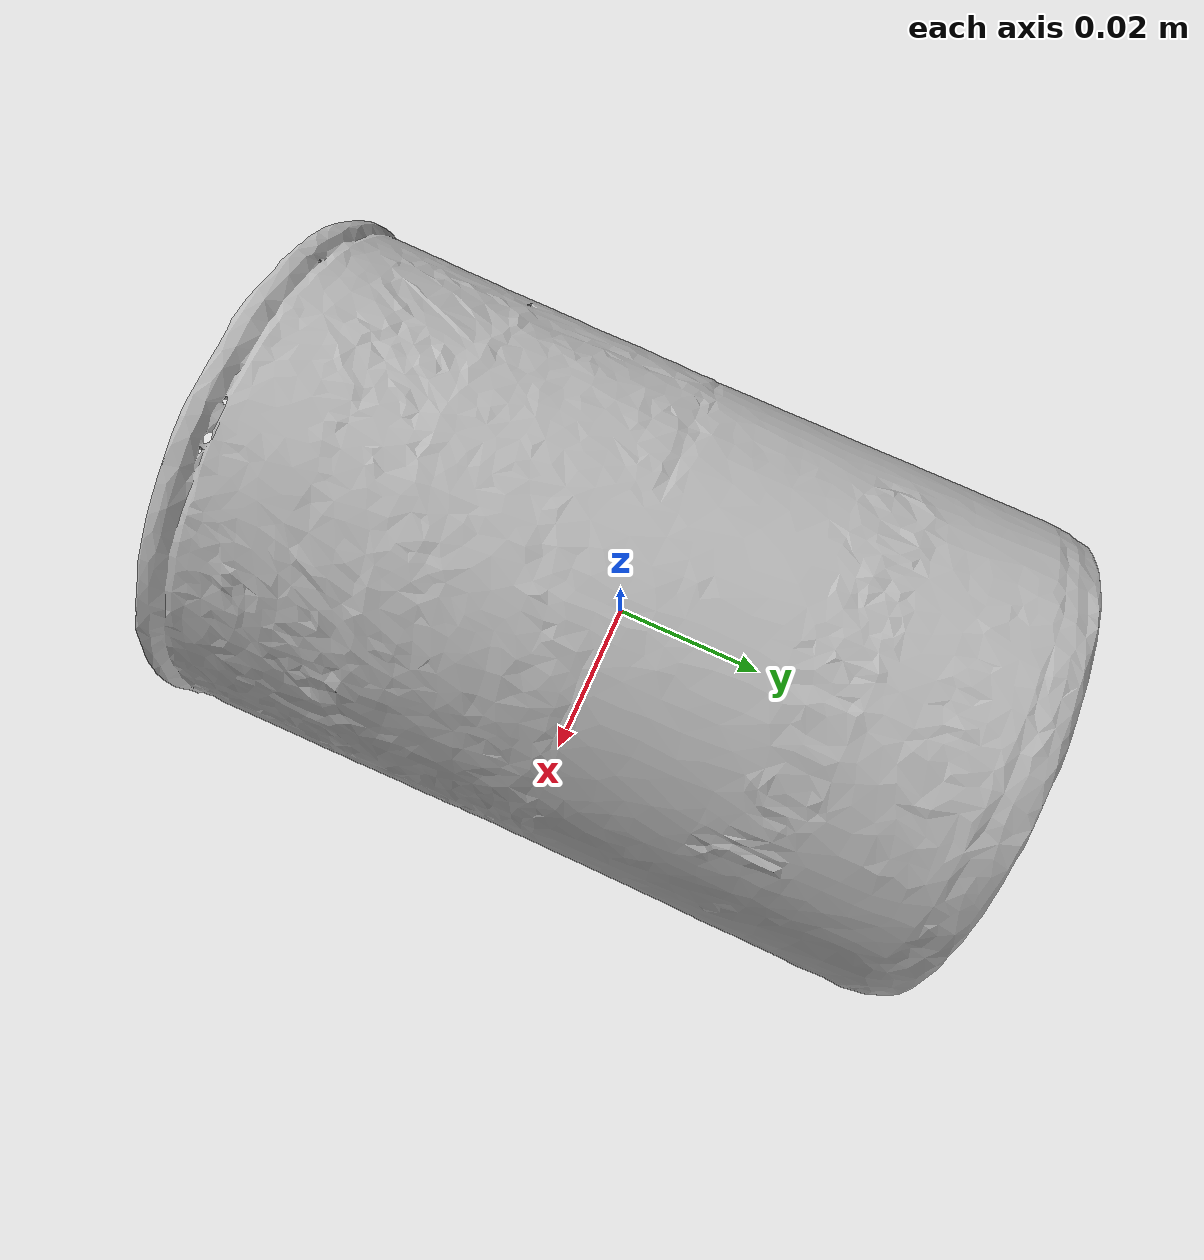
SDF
<?xml version="1.0"?>
<sdf version='1.6'>
<model name="005_tomato_soup_can">
  <link name="base_link_soup">

    <inertial>
      <pose frame=''>0 0 0 0 0 0</pose>
      <mass>0.349000</mass>
        <inertia>
          <ixx>0.000402</ixx>
          <ixy>0</ixy>
          <ixz>0</ixz>
          <iyy>0.000200</iyy>
          <iyz>0</iyz>
          <izz>0.000402</izz>
        </inertia>
    </inertial>

    <visual name='base_link_soup'>
      <pose frame=''>0 0 0 0 0 0</pose>
      <geometry>
        <mesh>
          <uri>../meshes/005_tomato_soup_can_textured.obj</uri>
        </mesh>
      </geometry>
    </visual>

    <collision name='tomato_soup_can_collision'>
      <pose>0 0 0 -1.57 0 0</pose>
      <geometry>
        <cylinder>
          <radius>0.027850</radius>
          <length>0.095900</length>
        </cylinder>
      </geometry>
      <material>
        <diffuse>0 1 0 1.0</diffuse>
      </material>
    </collision>

    <collision name='point_collision1'>
      <pose>0.014425 0.048450 0.014425 0 0 0 </pose>
      <geometry>
        <sphere><radius>1e-7</radius></sphere>
      </geometry>
    </collision>

    <collision name='point_collision2'>
      <pose>0.014425 -0.048450 0.014425 0 0 0 </pose>
      <geometry>
        <sphere><radius>1e-7</radius></sphere>
      </geometry>
    </collision>

    <collision name='point_collision3'>
      <pose>-0.014425 0.048450 0.014425 0 0 0 </pose>
      <geometry>
        <sphere><radius>1e-7</radius></sphere>
      </geometry>
    </collision>

    <collision name='point_collision4'>
      <pose>-0.014425 -0.048450 0.014425 0 0 0 </pose>
      <geometry>
        <sphere><radius>1e-7</radius></sphere>
      </geometry>
    </collision>

    <collision name='point_collision5'>
      <pose>0.014425 0.048450 -0.014425 0 0 0 </pose>
      <geometry>
        <sphere><radius>1e-7</radius></sphere>
      </geometry>
    </collision>

    <collision name='point_collision6'>
      <pose>0.014425 -0.048450 -0.014425 0 0 0 </pose>
      <geometry>
        <sphere><radius>1e-7</radius></sphere>
      </geometry>
    </collision>

    <collision name='point_collision7'>
      <pose>-0.014425 0.048450 -0.014425 0 0 0 </pose>
      <geometry>
        <sphere><radius>1e-7</radius></sphere>
      </geometry>
    </collision>

    <collision name='point_collision8'>
      <pose>-0.014425 -0.048450 -0.014425 0 0 0 </pose>
      <geometry>
        <sphere><radius>1e-7</radius></sphere>
      </geometry>
    </collision>

  </link>
</model>
</sdf>
